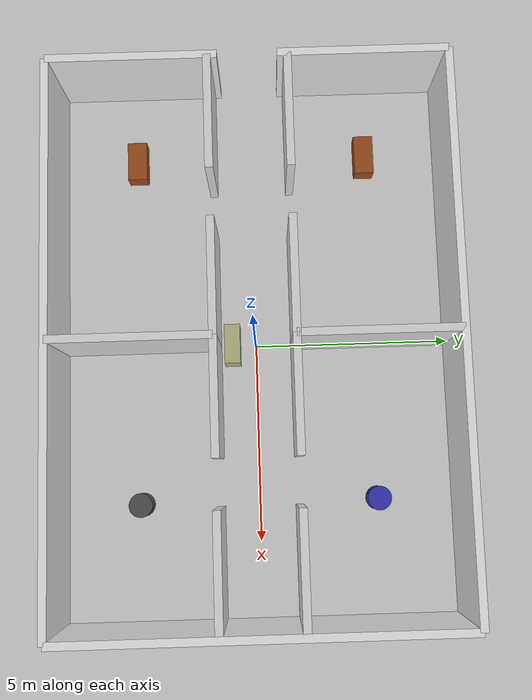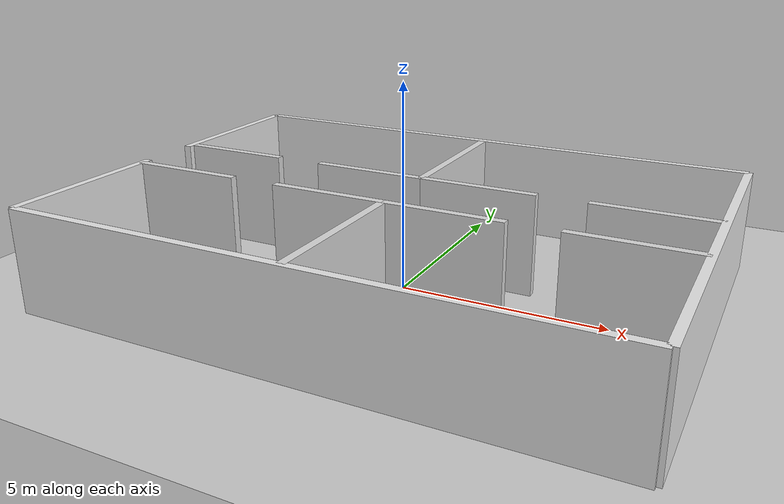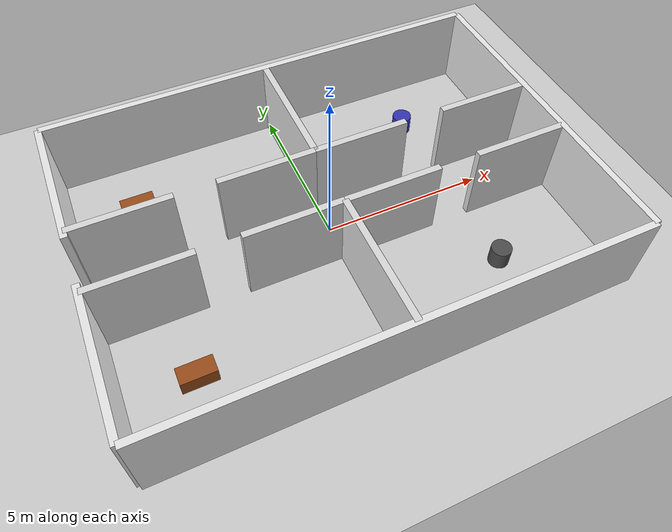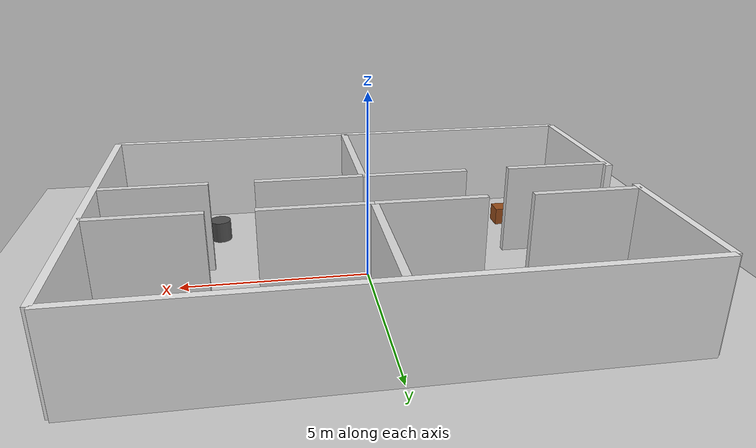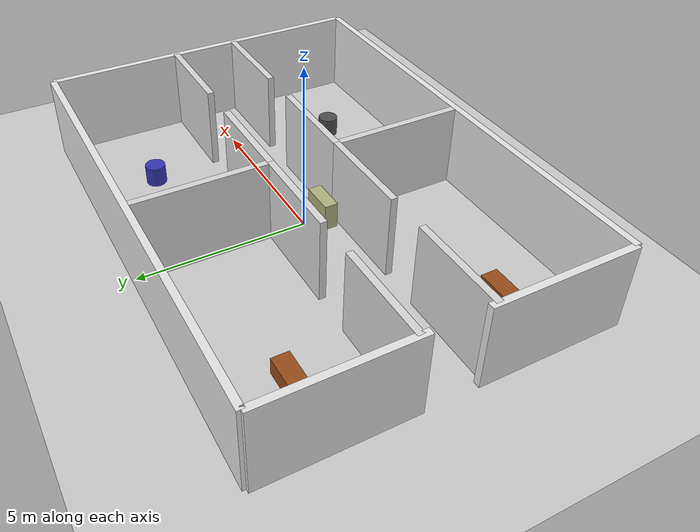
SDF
<?xml version="1.0" ?>
<sdf version="1.6">
  <world name="hospital_world">

    <!-- ============ Basics ============ -->
    <include>
      <uri>model://sun</uri>
    </include>
    <include>
      <uri>model://ground_plane</uri>
    </include>

    <physics type="ode">
      <max_step_size>0.001</max_step_size>
      <real_time_factor>1</real_time_factor>
      <real_time_update_rate>1000</real_time_update_rate>
      <ode>
        <solver>
          <type>quick</type>
          <iters>150</iters>
          <sor>1.0</sor>
        </solver>
        <constraints>
          <cfm>0.0001</cfm>
          <erp>0.2</erp>
          <contact_max_correcting_vel>100</contact_max_correcting_vel>
          <contact_surface_layer>0.001</contact_surface_layer>
        </constraints>
      </ode>
    </physics>

    <model name="hospital_walls">
      <static>true</static>

      <!-- Outer walls -->
      <link name="wall_north">
        <pose>0 5 1.25 0 0 0</pose>
        <collision name="collision"><geometry><box><size>14 0.2 2.5</size></box></geometry></collision>
        <visual name="visual"><geometry><box><size>14 0.2 2.5</size></box></geometry>
          <material><ambient>0.9 0.9 0.9 1</ambient></material>
        </visual>
      </link>

      <link name="wall_south">
        <pose>0 -5 1.25 0 0 0</pose>
        <collision name="collision"><geometry><box><size>14 0.2 2.5</size></box></geometry></collision>
        <visual name="visual"><geometry><box><size>14 0.2 2.5</size></box></geometry>
          <material><ambient>0.9 0.9 0.9 1</ambient></material>
        </visual>
      </link>

      <link name="wall_east">
        <pose>7 0 1.25 0 0 0</pose>
        <collision name="collision"><geometry><box><size>0.2 10 2.5</size></box></geometry></collision>
        <visual name="visual"><geometry><box><size>0.2 10 2.5</size></box></geometry>
          <material><ambient>0.9 0.9 0.9 1</ambient></material>
        </visual>
      </link>

      <!-- West wall split for main entrance (1.5 m gap centered at corridor, y=0) -->
      <link name="wall_west_bottom">
        <pose>-7 -2.875 1.25 0 0 0</pose>
        <collision name="collision"><geometry><box><size>0.2 4.25 2.5</size></box></geometry></collision>
        <visual name="visual"><geometry><box><size>0.2 4.25 2.5</size></box></geometry>
          <material><ambient>0.9 0.9 0.9 1</ambient></material>
        </visual>
      </link>
      <link name="wall_west_top">
        <pose>-7 2.875 1.25 0 0 0</pose>
        <collision name="collision"><geometry><box><size>0.2 4.25 2.5</size></box></geometry></collision>
        <visual name="visual"><geometry><box><size>0.2 4.25 2.5</size></box></geometry>
          <material><ambient>0.9 0.9 0.9 1</ambient></material>
        </visual>
      </link>

      <!-- Wall between north rooms and corridor (y=1), 2 doors (1.2 m each) -->
      <link name="wall_ncorr_1">
        <pose>-5.55 1 1.25 0 0 0</pose>
        <collision name="collision"><geometry><box><size>2.9 0.2 2.5</size></box></geometry></collision>
        <visual name="visual"><geometry><box><size>2.9 0.2 2.5</size></box></geometry>
          <material><ambient>0.85 0.85 0.85 1</ambient></material>
        </visual>
      </link>
      <link name="wall_ncorr_2">
        <pose>-1.45 1 1.25 0 0 0</pose>
        <collision name="collision"><geometry><box><size>2.9 0.2 2.5</size></box></geometry></collision>
        <visual name="visual"><geometry><box><size>2.9 0.2 2.5</size></box></geometry>
          <material><ambient>0.85 0.85 0.85 1</ambient></material>
        </visual>
      </link>
      <link name="wall_ncorr_3">
        <pose>1.45 1 1.25 0 0 0</pose>
        <collision name="collision"><geometry><box><size>2.9 0.2 2.5</size></box></geometry></collision>
        <visual name="visual"><geometry><box><size>2.9 0.2 2.5</size></box></geometry>
          <material><ambient>0.85 0.85 0.85 1</ambient></material>
        </visual>
      </link>
      <link name="wall_ncorr_4">
        <pose>5.55 1 1.25 0 0 0</pose>
        <collision name="collision"><geometry><box><size>2.9 0.2 2.5</size></box></geometry></collision>
        <visual name="visual"><geometry><box><size>2.9 0.2 2.5</size></box></geometry>
          <material><ambient>0.85 0.85 0.85 1</ambient></material>
        </visual>
      </link>

      <!-- Wall between south rooms and corridor (y=-1), 2 doors (1.2 m each) -->
      <link name="wall_scorr_1">
        <pose>-5.55 -1 1.25 0 0 0</pose>
        <collision name="collision"><geometry><box><size>2.9 0.2 2.5</size></box></geometry></collision>
        <visual name="visual"><geometry><box><size>2.9 0.2 2.5</size></box></geometry>
          <material><ambient>0.85 0.85 0.85 1</ambient></material>
        </visual>
      </link>
      <link name="wall_scorr_2">
        <pose>-1.45 -1 1.25 0 0 0</pose>
        <collision name="collision"><geometry><box><size>2.9 0.2 2.5</size></box></geometry></collision>
        <visual name="visual"><geometry><box><size>2.9 0.2 2.5</size></box></geometry>
          <material><ambient>0.85 0.85 0.85 1</ambient></material>
        </visual>
      </link>
      <link name="wall_scorr_3">
        <pose>1.45 -1 1.25 0 0 0</pose>
        <collision name="collision"><geometry><box><size>2.9 0.2 2.5</size></box></geometry></collision>
        <visual name="visual"><geometry><box><size>2.9 0.2 2.5</size></box></geometry>
          <material><ambient>0.85 0.85 0.85 1</ambient></material>
        </visual>
      </link>
      <link name="wall_scorr_4">
        <pose>5.55 -1 1.25 0 0 0</pose>
        <collision name="collision"><geometry><box><size>2.9 0.2 2.5</size></box></geometry></collision>
        <visual name="visual"><geometry><box><size>2.9 0.2 2.5</size></box></geometry>
          <material><ambient>0.85 0.85 0.85 1</ambient></material>
        </visual>
      </link>

      <!-- Vertical dividers splitting each side into 2 rooms -->
      <link name="wall_divider_north">
        <pose>0 3 1.25 0 0 0</pose>
        <collision name="collision"><geometry><box><size>0.2 4 2.5</size></box></geometry></collision>
        <visual name="visual"><geometry><box><size>0.2 4 2.5</size></box></geometry>
          <material><ambient>0.85 0.85 0.85 1</ambient></material>
        </visual>
      </link>
      <link name="wall_divider_south">
        <pose>0 -3 1.25 0 0 0</pose>
        <collision name="collision"><geometry><box><size>0.2 4 2.5</size></box></geometry></collision>
        <visual name="visual"><geometry><box><size>0.2 4 2.5</size></box></geometry>
          <material><ambient>0.85 0.85 0.85 1</ambient></material>
        </visual>
      </link>

    </model>

    <!-- ============ Obstacles (simple primitives only, one per room + 1 in corridor) ============ -->

    <!-- Room 1 (NW): box, e.g. hospital bed -->
    <model name="obstacle_bed_room1">
      <static>true</static>
      <pose>-5 3 0.25 0 0 0</pose>
      <link name="link">
        <collision name="collision"><geometry><box><size>1.0 0.5 0.5</size></box></geometry></collision>
        <visual name="visual"><geometry><box><size>1.0 0.5 0.5</size></box></geometry>
          <material><ambient>0.6 0.3 0.1 1</ambient></material>
        </visual>
      </link>
    </model>

    <!-- Room 2 (NE): cylinder, e.g. IV stand / small table -->
    <model name="obstacle_stand_room2">
      <static>true</static>
      <pose>4 3 0.3 0 0 0</pose>
      <link name="link">
        <collision name="collision"><geometry><cylinder><radius>0.3</radius><length>0.6</length></cylinder></geometry></collision>
        <visual name="visual"><geometry><cylinder><radius>0.3</radius><length>0.6</length></cylinder></geometry>
          <material><ambient>0.2 0.2 0.7 1</ambient></material>
        </visual>
      </link>
    </model>

    <!-- Room 3 (SW): box, e.g. hospital bed -->
    <model name="obstacle_bed_room3">
      <static>true</static>
      <pose>-5 -3 0.25 0 0 0</pose>
      <link name="link">
        <collision name="collision"><geometry><box><size>1.0 0.5 0.5</size></box></geometry></collision>
        <visual name="visual"><geometry><box><size>1.0 0.5 0.5</size></box></geometry>
          <material><ambient>0.6 0.3 0.1 1</ambient></material>
        </visual>
      </link>
    </model>

    <!-- Room 4 (SE): cylinder, e.g. trash bin -->
    <model name="obstacle_bin_room4">
      <static>true</static>
      <pose>4 -3 0.3 0 0 0</pose>
      <link name="link">
        <collision name="collision"><geometry><cylinder><radius>0.3</radius><length>0.6</length></cylinder></geometry></collision>
        <visual name="visual"><geometry><cylinder><radius>0.3</radius><length>0.6</length></cylinder></geometry>
          <material><ambient>0.3 0.3 0.3 1</ambient></material>
        </visual>
      </link>
    </model>

    <!-- Corridor: box, e.g. reception desk (kept to one side so path stays clear) -->
    <model name="obstacle_desk_corridor">
      <static>true</static>
      <pose>0 -0.6 0.4 0 0 0</pose>
      <link name="link">
        <collision name="collision"><geometry><box><size>1.0 0.4 0.8</size></box></geometry></collision>
        <visual name="visual"><geometry><box><size>1.0 0.4 0.8</size></box></geometry>
          <material><ambient>0.7 0.7 0.5 1</ambient></material>
        </visual>
      </link>
    </model>

  </world>
</sdf>
